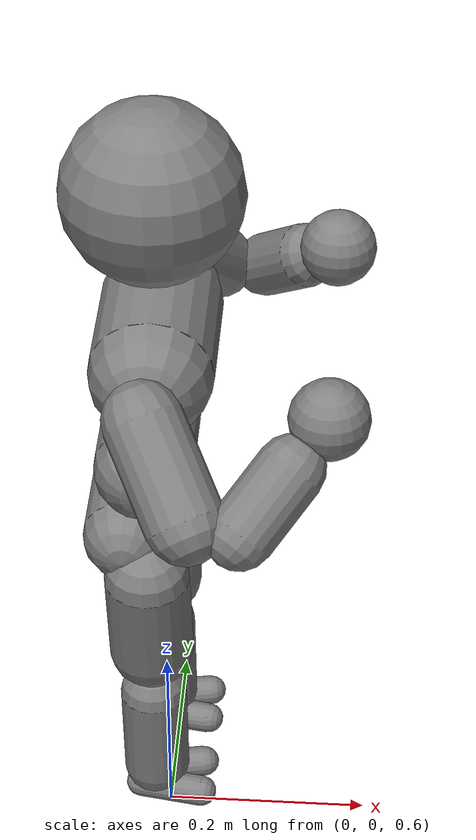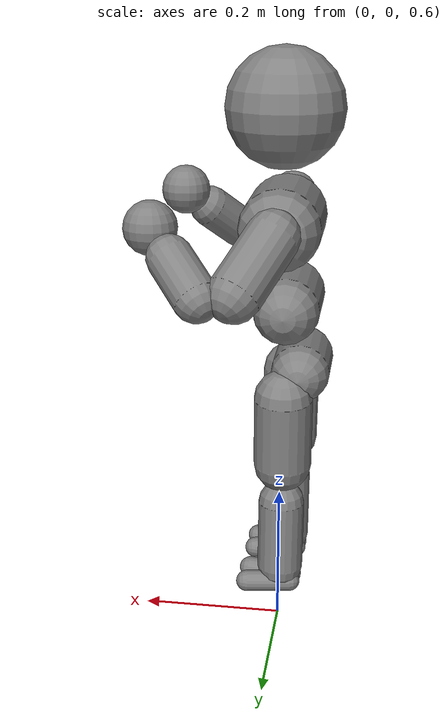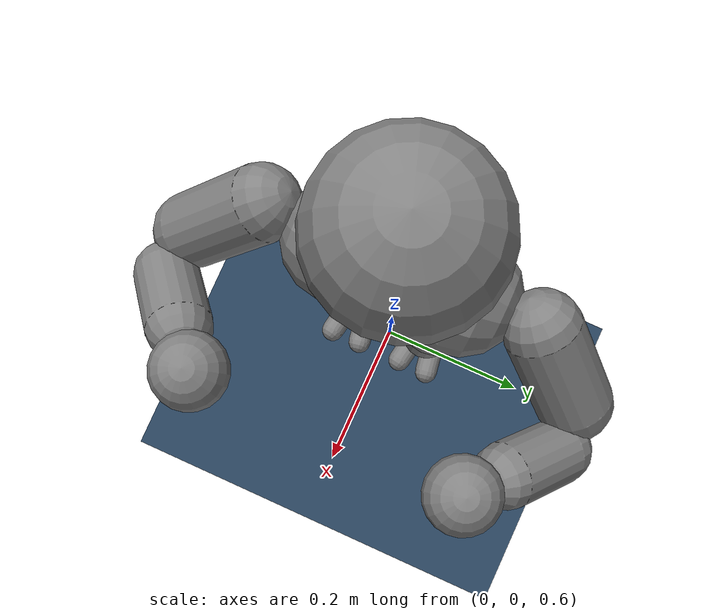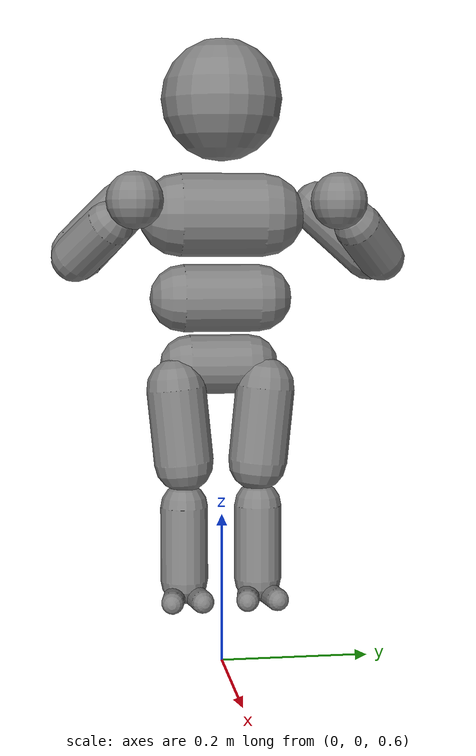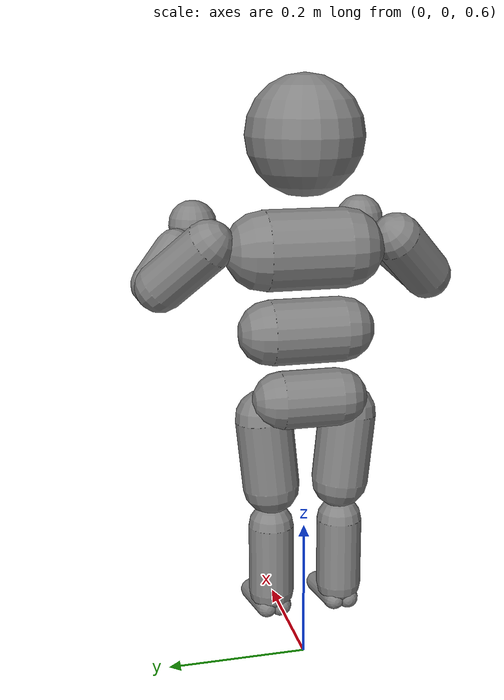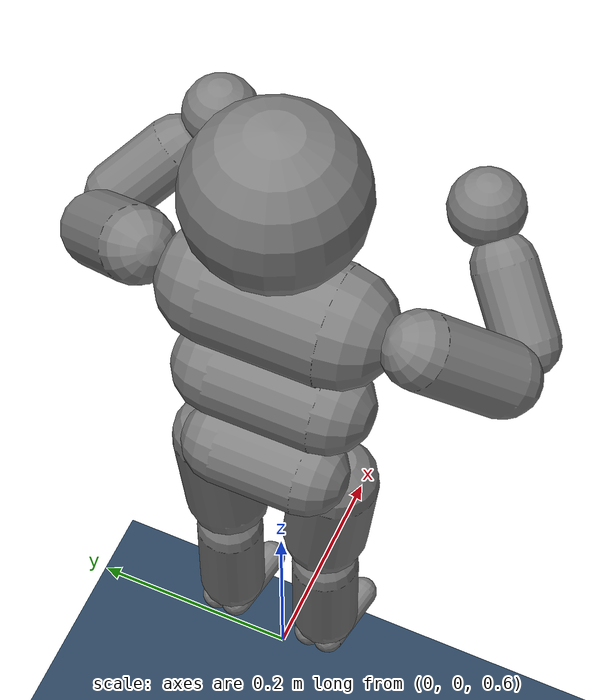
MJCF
<mujoco model="humanoid">

  <statistic extent="2" center="0 0 1"/>

  <option timestep="0.005"/>

  <visual>
    <map force="0.1" zfar="30"/>
    <rgba haze="0.15 0.25 0.35 1"/>
    <global offwidth="2560" offheight="1440" elevation="-20" azimuth="120"/>
  </visual>

  <statistic center="0 0 0.7"/>

  <asset>
    <texture type="skybox" builtin="gradient" rgb1=".3 .5 .7" rgb2="0 0 0" width="32" height="512"/>
    <texture name="body" type="cube" builtin="flat" mark="cross" width="128" height="128" rgb1="0.8 0.6 0.4" rgb2="0.8 0.6 0.4" markrgb="1 1 1"/>
    <material name="body" texture="body" texuniform="true" rgba="0.8 0.6 .4 1"/>
    <texture name="grid" type="2d" builtin="checker" width="512" height="512" rgb1=".1 .2 .3" rgb2=".2 .3 .4"/>
    <material name="grid" texture="grid" texrepeat="1 1" texuniform="true" reflectance=".2"/>
  </asset>

  <default>
    <motor ctrlrange="-1 1" ctrllimited="true"/>
    <default class="body">
      <geom  type="capsule" condim="1" friction="1.0 0.05 0.05" solimp=".9 .99 .003" solref=".015 1"/>
      <joint type="hinge" damping="0.1" stiffness="5" armature=".007" limited="true" solimplimit="0 .99 .01"/>
      <default class="small_joint">
        <joint damping="1.0" stiffness="2" armature=".006"/>
      </default>
      <default class="big_joint">
        <joint damping="5" stiffness="10" armature=".01"/>
      </default>
      <default class="bigger_stiff_joint">
        <joint damping="5" stiffness="20" armature=".01"/>
      </default>
      <default class="big_stiff_joint">
        <joint damping="5" stiffness="20" armature=".02"/>
      </default>
      <site size=".04" group="3"/>
      <default class="force-torque">
        <site type="box" size=".01 .01 .02" rgba="1 0 0 1" />
      </default>
      <default class="touch">
        <site type="capsule" rgba="0 0 1 .3"/>
      </default>
    </default>
  </default>

  <worldbody>
    <geom name="floor" type="plane" conaffinity="1" size="100 100 .2" material="grid"/>
    <body name="torso" pos="0 0 1.2" childclass="body">
      <light name="top" pos="0 0 2" mode="trackcom"/>
      <camera name="back" pos="-3 0 1" xyaxes="0 -1 0 1 0 2" mode="trackcom"/>
      <camera name="side" pos="0 -3 1" xyaxes="1 0 0 0 1 2" mode="trackcom"/>
      <freejoint name="root"/>
      <site name="root" class="force-torque"/>
      <geom name="torso" fromto="0 -.055 0 0 .055 0" size=".055"/>
      <!--geom name="upper_waist" fromto="-.01 -.045 -.10 -.01 .045 -.10" size=".045"/-->
      <site name="torso" class="touch" type="box" pos="0 0 -.05" size=".07 .12 .11"/>
      <body name="head" pos="0 0 .15">
        <geom name="head" type="sphere" size=".08"/>
        <site name="head" class="touch" type="sphere" size=".121"/>
        <camera name="egocentric" pos=".12 0 0" xyaxes="0 -1 0 .1 0 1" fovy="80"/>
      </body>
      <body name="lower_waist" pos="-.01 0 -.11" quat="1.000 0 -.002 0">
        <geom name="lower_waist" fromto="0 -.05 0 0 .05 0" size=".045"/>
        <site name="lower_waist" class="touch" size=".051 .05" zaxis="0 1 0"/>
        <body name="pelvis" pos="0 0 -.09" quat="1.000 0 -.002 0">
          <geom name="butt" fromto="-.02 -.04 0 -.02 .04 0" size=".04"/>
          <site name="butt" class="touch" size=".081 .06" pos="-.02 0 0" zaxis="0 1 0"/>
          <body name="right_thigh" pos="0 -.06 -.03">
            <site name="right_hip" class="force-torque"/>
            <joint name="right_hip_x" axis="1 0 0" range="-30 10" class="big_joint"/>
            <joint name="right_hip_z" axis="0 0 1" range="-45 25" class="big_joint"/>
            <joint name="right_hip_y" axis="0 1 0" range="-90 40" class="bigger_stiff_joint"/>
            <geom name="right_thigh" fromto="0 0 0 0 .01 -.1" size=".04"/>
            <site name="right_thigh" class="touch" pos="0 .005 -.11" size=".051 .12" zaxis="0 -1 25"/>
            <body name="right_shin" pos="0 .01 -.16">
              <site name="right_knee" class="force-torque" pos="0 0 .02"/>
              <joint name="right_knee" pos="0 0 .02" axis="0 -1 0" range="-120 2"/>
              <geom name="right_shin" fromto="0 0 0 0 0 -.10"  size=".032"/>
              <site name="right_shin" class="touch" pos="0 0 -.1" size=".045 .1"/>
              <body name="right_foot" pos="0 0 -.12">
                <site name="right_ankle" class="force-torque"/>
                <joint name="right_ankle_y" pos="0 0 .085" axis="0 1 0" range="-20 20" class="small_joint"/>
                <joint name="right_ankle_x" pos="0 0 .085" axis="1 0 .5" range="-6 6" class="small_joint"/>
                <geom name="right_right_foot" fromto="-.015 -.01 0 .045 -.02 0" size=".015"/>
                <geom name="left_right_foot" fromto="-.015 0.01 0 .045  .02 0" size=".015"/>
                <site name="right_right_foot" class="touch" pos=".025 -.02 0" size=".025 .08" zaxis="15 -2 0"/>
                <site name="left_right_foot" class="touch" pos=".025 .01 0" size=".025 .08" zaxis="15 2 0"/>
              </body>
            </body>
          </body>
          <body name="left_thigh" pos="0 .06 -.03">
            <site name="left_hip" class="force-torque"/>
            <joint name="left_hip_x" axis="-1 0 0" range="-30 10" class="big_joint"/>
            <joint name="left_hip_z" axis="0 0 -1" range="-45 25" class="big_joint"/>
            <joint name="left_hip_y" axis="0 1 0" range="-90 40" class="bigger_stiff_joint"/>
            <geom name="left_thigh" fromto="0 0 0 0 -.01 -.1" size=".04"/>
            <site name="left_thigh" class="touch" pos="0 -.005 -.11" size=".051 .12" zaxis="0 1 25"/>
            <body name="left_shin" pos="0 -.01 -.16">
              <site name="left_knee" class="force-torque" pos="0 0 .02"/>
              <joint name="left_knee" pos="0 0 .02" axis="0 -1 0" range="-120 2"/>
              <geom name="left_shin" fromto="0 0 0 0 0 -.1"  size=".032"/>
              <site name="left_shin" class="touch"  pos="0 0 -.1" size=".045 .1"/>
              <body name="left_foot" pos="0 0 -.12">
                <site name="left_ankle" class="force-torque"/>
                <joint name="left_ankle_y" pos="0 0 .085" axis="0 1 0" range="-20 20" class="small_joint"/>
                <joint name="left_ankle_x" pos="0 0 .085" axis="1 0 .5" range="-6 6" class="small_joint"/>
                <geom name="left_left_foot" fromto="-.015 .01 0 .045 .02 0" size=".015"/>
                <geom name="right_left_foot" fromto="-.015 -.01 0 .045  -.02 0" size=".015"/>
                <site name="right_left_foot" class="touch" pos=".025 -.01 0" size=".025 .08" zaxis="15 -2 0"/>
                <site name="left_left_foot" class="touch" pos=".025 .03 0" size=".025 .08" zaxis="15 2 0"/>
              </body>
            </body>
          </body>
        </body>
      </body>
      <body name="right_upper_arm" pos="0 -.13 .01">
        <joint name="right_shoulder1" axis="2 1 1"  range="-70 50" class="big_joint"/>
        <joint name="right_shoulder2" axis="0 -1 1" range="-70 50" class="big_joint"/>
        <geom name="right_upper_arm" fromto="0 0 0 .04 -.06 -.06" size=".035"/>
        <site name="right_upper_arm" class="touch" pos=".06 -.06 -.06" size=".035 .12" zaxis="1 -1 -1"/>
        <body name="right_lower_arm" pos=".075 -.075 -.075">
          <joint name="right_elbow" axis="0 -1 1" range="-85 40" class="small_joint"/>
          <geom name="right_lower_arm" fromto=".01 .01 .01 .05 .05 .05" size=".03"/>
          <site name="right_lower_arm" class="touch" pos=".065 .065 .065" size=".03 .12" zaxis="1 1 1"/>
          <body name="right_hand" pos=".08 .08 .08">
            <geom name="right_hand" type="sphere" size=".035"/>
            <site name="right_hand" class="touch" type="sphere" size=".04"/>
          </body>
        </body>
      </body>
      <body name="left_upper_arm" pos="0 .13 .01">
        <joint name="left_shoulder1" axis="-2 1 -1" range="-70 50" class="big_joint"/>
        <joint name="left_shoulder2" axis="0 -1 -1" range="-70 50" class="big_joint"/>
        <geom name="left_upper_arm" fromto="0 0 0 .04 .06 -.06" size=".035"/>
        <site name="left_upper_arm" class="touch" pos=".06 .06 -.06" size=".035 .12" zaxis="1 1 -1"/>
        <body name="left_lower_arm" pos=".075 .075 -.075">
          <joint name="left_elbow" axis="0 -1 -1" range="-85 40" class="small_joint"/>
          <geom name="left_lower_arm" fromto=".01 -.01 .01 .05 -.05 .05" size=".03"/>
          <site name="left_lower_arm" class="touch" pos=".065 -.065 .065" size=".03 .12" zaxis="1 -1 1"/>
          <body name="left_hand" pos=".08 -.08 .08">
            <geom name="left_hand" type="sphere" size=".035"/>
            <site name="left_hand" class="touch" type="sphere" size=".035"/>
          </body>
        </body>
      </body>
    </body>
  </worldbody>

  <actuator>
    <motor name='right_hip_x'     gear='45.0' joint='right_hip_x'/>
    <motor name='right_hip_z'     gear='45.0' joint='right_hip_z'/>
    <motor name='right_hip_y'     gear='135.0' joint='right_hip_y'/>
    <motor name='right_knee'      gear='90.0' joint='right_knee'/>
    <motor name='right_ankle_x'   gear='22.5' joint='right_ankle_x'/>
    <motor name='right_ankle_y'   gear='22.5' joint='right_ankle_y'/>
    <motor name='left_hip_x'      gear='45.0' joint='left_hip_x'/>
    <motor name='left_hip_z'      gear='45.0' joint='left_hip_z'/>
    <motor name='left_hip_y'      gear='135.0' joint='left_hip_y'/>
    <motor name='left_knee'       gear='90.0' joint='left_knee'/>
    <motor name='left_ankle_x'    gear='22.5' joint='left_ankle_x'/>
    <motor name='left_ankle_y'    gear='22.5' joint='left_ankle_y'/>
    <motor name='right_shoulder1' gear='67.5' joint='right_shoulder1'/>
    <motor name='right_shoulder2' gear='67.5' joint='right_shoulder2'/>
    <motor name='right_elbow'     gear='45.0' joint='right_elbow'/>
    <motor name='left_shoulder1'  gear='67.5' joint='left_shoulder1'/>
    <motor name='left_shoulder2'  gear='67.5' joint='left_shoulder2'/>
    <motor name='left_elbow'      gear='45.0' joint='left_elbow'/>
  </actuator>

  <sensor>
    <subtreelinvel name="torso_subtreelinvel" body="torso"/>
    <accelerometer name="torso_accel"    site="root"/>
    <velocimeter name="torso_vel"        site="root"/>
    <gyro name="torso_gyro"              site="root"/>

    <force name="left_ankle_force"       site="left_ankle"/>
    <force name="right_ankle_force"      site="right_ankle"/>
    <force name="left_knee_force"        site="left_knee"/>
    <force name="right_knee_force"       site="right_knee"/>
    <force name="left_hip_force"         site="left_hip"/>
    <force name="right_hip_force"        site="right_hip"/>

    <torque name="left_ankle_torque"     site="left_ankle"/>
    <torque name="right_ankle_torque"    site="right_ankle"/>
    <torque name="left_knee_torque"      site="left_knee"/>
    <torque name="right_knee_torque"     site="right_knee"/>
    <torque name="left_hip_torque"       site="left_hip"/>
    <torque name="right_hip_torque"      site="right_hip"/>

    <touch name="torso_touch"            site="torso"/>
    <touch name="head_touch"             site="head"/>
    <touch name="lower_waist_touch"      site="lower_waist"/>
    <touch name="butt_touch"             site="butt"/>
    <touch name="right_thigh_touch"      site="right_thigh"/>
    <touch name="right_shin_touch"       site="right_shin"/>
    <touch name="right_right_foot_touch" site="right_right_foot"/>
    <touch name="left_right_foot_touch"  site="left_right_foot"/>
    <touch name="left_thigh_touch"       site="left_thigh"/>
    <touch name="left_shin_touch"        site="left_shin"/>
    <touch name="right_left_foot_touch"  site="right_left_foot"/>
    <touch name="left_left_foot_touch"   site="left_left_foot"/>
    <touch name="right_upper_arm_touch"  site="right_upper_arm"/>
    <touch name="right_lower_arm_touch"  site="right_lower_arm"/>
    <touch name="right_hand_touch"       site="right_hand"/>
    <touch name="left_upper_arm_touch"   site="left_upper_arm"/>
    <touch name="left_lower_arm_touch"   site="left_lower_arm"/>
    <touch name="left_hand_touch"        site="left_hand"/>
  </sensor>

</mujoco>
